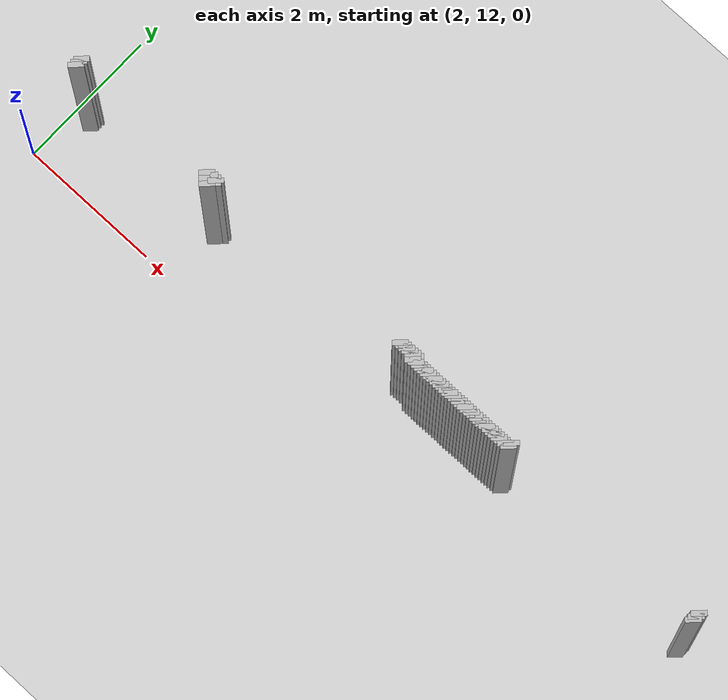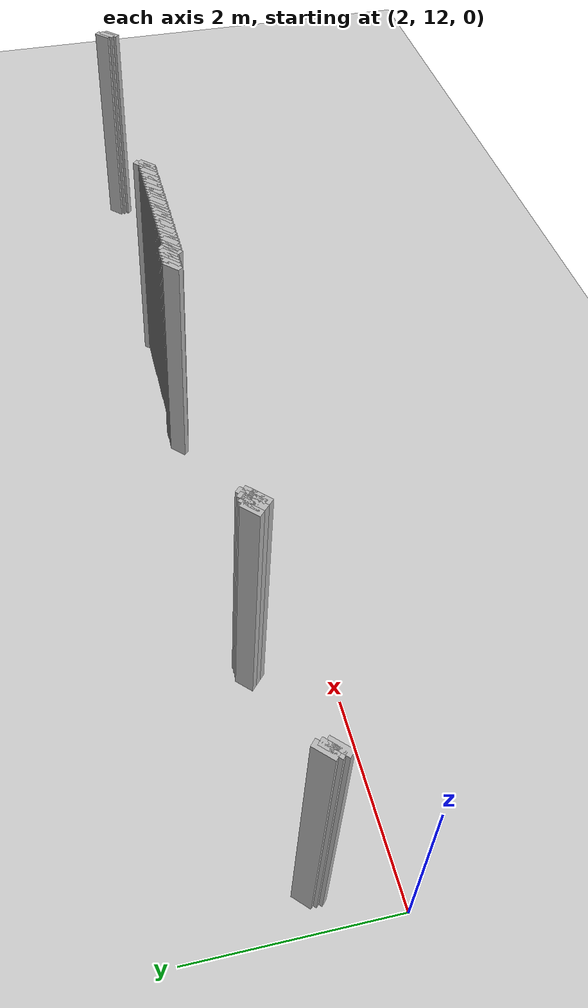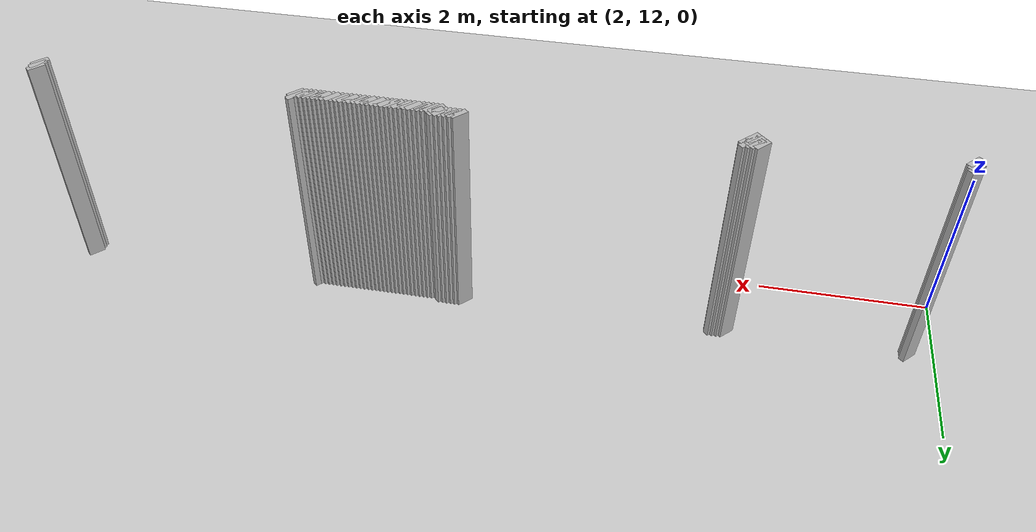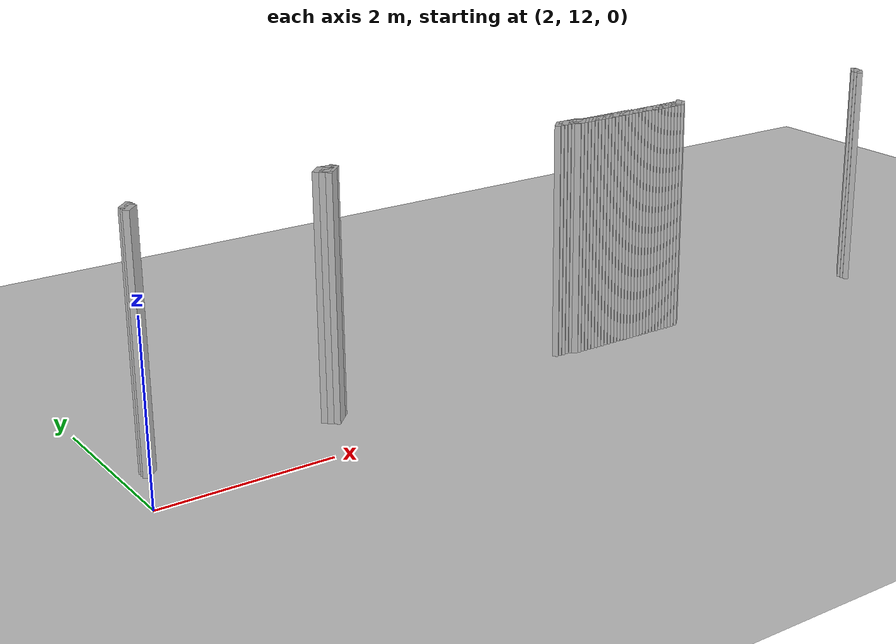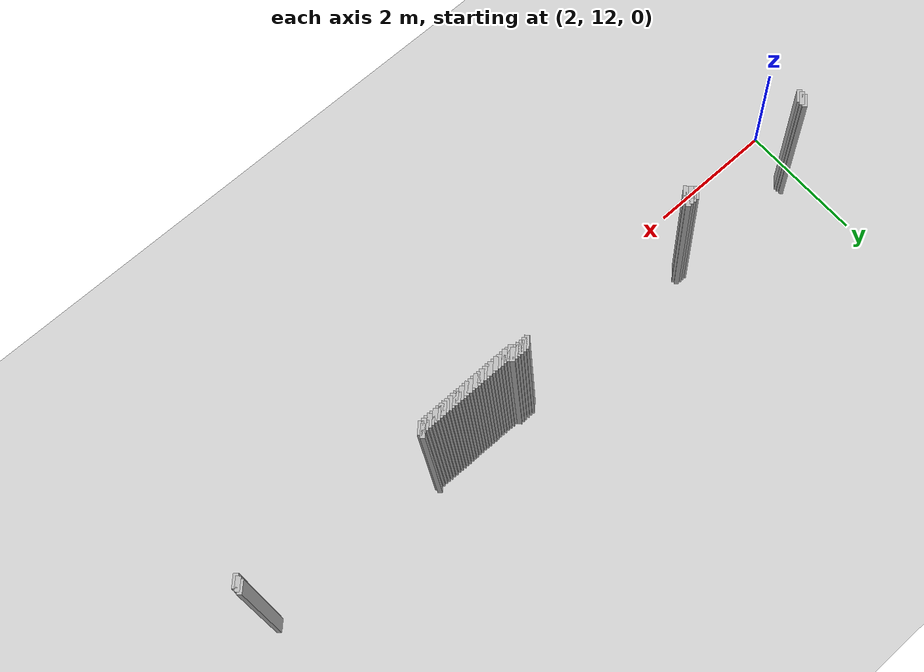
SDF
<sdf version="1.5">
 <world name="default">
  <include><uri>model://ground_plane</uri></include>
  <include><uri>model://sun</uri></include>
  <model name="grey_wall_900">
   <static>1</static>
   <link name="link">
    <pose>7.550000000000001 12.9  1.4 0 0 -0.7853981633974483</pose>
    <collision name="collision">
     <geometry><box><size>0.07071067811865576 .2  2.8</size></box></geometry>
    </collision>
    <visual name="visual">
     <cast_shadows>0</cast_shadows>
     <geometry><box><size>0.07071067811865576 .2  2.8</size></box></geometry>
    </visual>
   </link>
  </model>
  <model name="grey_wall_901">
   <static>1</static>
   <link name="link">
    <pose>7.6000000000000005 12.9  1.4 0 0 -0.7853981633974483</pose>
    <collision name="collision">
     <geometry><box><size>0.07071067811865576 .2  2.8</size></box></geometry>
    </collision>
    <visual name="visual">
     <cast_shadows>0</cast_shadows>
     <geometry><box><size>0.07071067811865576 .2  2.8</size></box></geometry>
    </visual>
   </link>
  </model>
  <model name="grey_wall_902">
   <static>1</static>
   <link name="link">
    <pose>7.65 12.9  1.4 0 0 -0.7853981633974483</pose>
    <collision name="collision">
     <geometry><box><size>0.07071067811865576 .2  2.8</size></box></geometry>
    </collision>
    <visual name="visual">
     <cast_shadows>0</cast_shadows>
     <geometry><box><size>0.07071067811865576 .2  2.8</size></box></geometry>
    </visual>
   </link>
  </model>
  <model name="grey_wall_903">
   <static>1</static>
   <link name="link">
    <pose>7.7 12.9  1.4 0 0 -0.7853981633974483</pose>
    <collision name="collision">
     <geometry><box><size>0.07071067811865576 .2  2.8</size></box></geometry>
    </collision>
    <visual name="visual">
     <cast_shadows>0</cast_shadows>
     <geometry><box><size>0.07071067811865576 .2  2.8</size></box></geometry>
    </visual>
   </link>
  </model>
  <model name="grey_wall_904">
   <static>1</static>
   <link name="link">
    <pose>7.75 12.9  1.4 0 0 -0.7853981633974483</pose>
    <collision name="collision">
     <geometry><box><size>0.07071067811865576 .2  2.8</size></box></geometry>
    </collision>
    <visual name="visual">
     <cast_shadows>0</cast_shadows>
     <geometry><box><size>0.07071067811865576 .2  2.8</size></box></geometry>
    </visual>
   </link>
  </model>
  <model name="grey_wall_905">
   <static>1</static>
   <link name="link">
    <pose>7.800000000000001 12.9  1.4 0 0 -0.7853981633974483</pose>
    <collision name="collision">
     <geometry><box><size>0.07071067811865576 .2  2.8</size></box></geometry>
    </collision>
    <visual name="visual">
     <cast_shadows>0</cast_shadows>
     <geometry><box><size>0.07071067811865576 .2  2.8</size></box></geometry>
    </visual>
   </link>
  </model>
  <model name="grey_wall_906">
   <static>1</static>
   <link name="link">
    <pose>9.35 12.9  1.4 0 0 -0.7853981633974483</pose>
    <collision name="collision">
     <geometry><box><size>0.07071067811865576 .2  2.8</size></box></geometry>
    </collision>
    <visual name="visual">
     <cast_shadows>0</cast_shadows>
     <geometry><box><size>0.07071067811865576 .2  2.8</size></box></geometry>
    </visual>
   </link>
  </model>
  <model name="grey_wall_907">
   <static>1</static>
   <link name="link">
    <pose>12.350000000000001 12.9  1.4 0 0 -0.7853981633974483</pose>
    <collision name="collision">
     <geometry><box><size>0.07071067811865576 .2  2.8</size></box></geometry>
    </collision>
    <visual name="visual">
     <cast_shadows>0</cast_shadows>
     <geometry><box><size>0.07071067811865576 .2  2.8</size></box></geometry>
    </visual>
   </link>
  </model>
  <model name="grey_wall_908">
   <static>1</static>
   <link name="link">
    <pose>2.3000000000000003 12.850000000000001  1.4 0 0 -0.7853981633974572</pose>
    <collision name="collision">
     <geometry><box><size>0.07071067811865513 .2  2.8</size></box></geometry>
    </collision>
    <visual name="visual">
     <cast_shadows>0</cast_shadows>
     <geometry><box><size>0.07071067811865513 .2  2.8</size></box></geometry>
    </visual>
   </link>
  </model>
  <model name="grey_wall_909">
   <static>1</static>
   <link name="link">
    <pose>4.4 12.850000000000001  1.4 0 0 -0.7853981633974483</pose>
    <collision name="collision">
     <geometry><box><size>0.07071067811865576 .2  2.8</size></box></geometry>
    </collision>
    <visual name="visual">
     <cast_shadows>0</cast_shadows>
     <geometry><box><size>0.07071067811865576 .2  2.8</size></box></geometry>
    </visual>
   </link>
  </model>
  <model name="grey_wall_910">
   <static>1</static>
   <link name="link">
    <pose>4.45 12.850000000000001  1.4 0 0 -0.7853981633974483</pose>
    <collision name="collision">
     <geometry><box><size>0.07071067811865576 .2  2.8</size></box></geometry>
    </collision>
    <visual name="visual">
     <cast_shadows>0</cast_shadows>
     <geometry><box><size>0.07071067811865576 .2  2.8</size></box></geometry>
    </visual>
   </link>
  </model>
  <model name="grey_wall_911">
   <static>1</static>
   <link name="link">
    <pose>4.5 12.850000000000001  1.4 0 0 -0.7853981633974483</pose>
    <collision name="collision">
     <geometry><box><size>0.07071067811865576 .2  2.8</size></box></geometry>
    </collision>
    <visual name="visual">
     <cast_shadows>0</cast_shadows>
     <geometry><box><size>0.07071067811865576 .2  2.8</size></box></geometry>
    </visual>
   </link>
  </model>
  <model name="grey_wall_912">
   <static>1</static>
   <link name="link">
    <pose>4.55 12.850000000000001  1.4 0 0 -0.7853981633974483</pose>
    <collision name="collision">
     <geometry><box><size>0.07071067811865576 .2  2.8</size></box></geometry>
    </collision>
    <visual name="visual">
     <cast_shadows>0</cast_shadows>
     <geometry><box><size>0.07071067811865576 .2  2.8</size></box></geometry>
    </visual>
   </link>
  </model>
  <model name="grey_wall_913">
   <static>1</static>
   <link name="link">
    <pose>7.800000000000001 12.850000000000001  1.4 0 0 -0.7853981633974483</pose>
    <collision name="collision">
     <geometry><box><size>0.07071067811865576 .2  2.8</size></box></geometry>
    </collision>
    <visual name="visual">
     <cast_shadows>0</cast_shadows>
     <geometry><box><size>0.07071067811865576 .2  2.8</size></box></geometry>
    </visual>
   </link>
  </model>
  <model name="grey_wall_914">
   <static>1</static>
   <link name="link">
    <pose>7.8500000000000005 12.850000000000001  1.4 0 0 -0.7853981633974483</pose>
    <collision name="collision">
     <geometry><box><size>0.07071067811865576 .2  2.8</size></box></geometry>
    </collision>
    <visual name="visual">
     <cast_shadows>0</cast_shadows>
     <geometry><box><size>0.07071067811865576 .2  2.8</size></box></geometry>
    </visual>
   </link>
  </model>
  <model name="grey_wall_915">
   <static>1</static>
   <link name="link">
    <pose>7.9 12.850000000000001  1.4 0 0 -0.7853981633974483</pose>
    <collision name="collision">
     <geometry><box><size>0.07071067811865576 .2  2.8</size></box></geometry>
    </collision>
    <visual name="visual">
     <cast_shadows>0</cast_shadows>
     <geometry><box><size>0.07071067811865576 .2  2.8</size></box></geometry>
    </visual>
   </link>
  </model>
  <model name="grey_wall_916">
   <static>1</static>
   <link name="link">
    <pose>7.95 12.850000000000001  1.4 0 0 -0.7853981633974483</pose>
    <collision name="collision">
     <geometry><box><size>0.07071067811865576 .2  2.8</size></box></geometry>
    </collision>
    <visual name="visual">
     <cast_shadows>0</cast_shadows>
     <geometry><box><size>0.07071067811865576 .2  2.8</size></box></geometry>
    </visual>
   </link>
  </model>
  <model name="grey_wall_917">
   <static>1</static>
   <link name="link">
    <pose>8.0 12.850000000000001  1.4 0 0 -0.7853981633974483</pose>
    <collision name="collision">
     <geometry><box><size>0.07071067811865576 .2  2.8</size></box></geometry>
    </collision>
    <visual name="visual">
     <cast_shadows>0</cast_shadows>
     <geometry><box><size>0.07071067811865576 .2  2.8</size></box></geometry>
    </visual>
   </link>
  </model>
  <model name="grey_wall_918">
   <static>1</static>
   <link name="link">
    <pose>8.05 12.850000000000001  1.4 0 0 -0.7853981633974483</pose>
    <collision name="collision">
     <geometry><box><size>0.07071067811865576 .2  2.8</size></box></geometry>
    </collision>
    <visual name="visual">
     <cast_shadows>0</cast_shadows>
     <geometry><box><size>0.07071067811865576 .2  2.8</size></box></geometry>
    </visual>
   </link>
  </model>
  <model name="grey_wall_919">
   <static>1</static>
   <link name="link">
    <pose>8.1 12.850000000000001  1.4 0 0 -0.7853981633974483</pose>
    <collision name="collision">
     <geometry><box><size>0.07071067811865576 .2  2.8</size></box></geometry>
    </collision>
    <visual name="visual">
     <cast_shadows>0</cast_shadows>
     <geometry><box><size>0.07071067811865576 .2  2.8</size></box></geometry>
    </visual>
   </link>
  </model>
  <model name="grey_wall_920">
   <static>1</static>
   <link name="link">
    <pose>8.15 12.850000000000001  1.4 0 0 -0.7853981633974483</pose>
    <collision name="collision">
     <geometry><box><size>0.07071067811865576 .2  2.8</size></box></geometry>
    </collision>
    <visual name="visual">
     <cast_shadows>0</cast_shadows>
     <geometry><box><size>0.07071067811865576 .2  2.8</size></box></geometry>
    </visual>
   </link>
  </model>
  <model name="grey_wall_921">
   <static>1</static>
   <link name="link">
    <pose>8.200000000000001 12.850000000000001  1.4 0 0 -0.7853981633974483</pose>
    <collision name="collision">
     <geometry><box><size>0.07071067811865576 .2  2.8</size></box></geometry>
    </collision>
    <visual name="visual">
     <cast_shadows>0</cast_shadows>
     <geometry><box><size>0.07071067811865576 .2  2.8</size></box></geometry>
    </visual>
   </link>
  </model>
  <model name="grey_wall_922">
   <static>1</static>
   <link name="link">
    <pose>8.25 12.850000000000001  1.4 0 0 -0.7853981633974483</pose>
    <collision name="collision">
     <geometry><box><size>0.07071067811865576 .2  2.8</size></box></geometry>
    </collision>
    <visual name="visual">
     <cast_shadows>0</cast_shadows>
     <geometry><box><size>0.07071067811865576 .2  2.8</size></box></geometry>
    </visual>
   </link>
  </model>
  <model name="grey_wall_923">
   <static>1</static>
   <link name="link">
    <pose>8.3 12.850000000000001  1.4 0 0 -0.7853981633974483</pose>
    <collision name="collision">
     <geometry><box><size>0.07071067811865576 .2  2.8</size></box></geometry>
    </collision>
    <visual name="visual">
     <cast_shadows>0</cast_shadows>
     <geometry><box><size>0.07071067811865576 .2  2.8</size></box></geometry>
    </visual>
   </link>
  </model>
  <model name="grey_wall_924">
   <static>1</static>
   <link name="link">
    <pose>8.35 12.850000000000001  1.4 0 0 -0.7853981633974483</pose>
    <collision name="collision">
     <geometry><box><size>0.07071067811865576 .2  2.8</size></box></geometry>
    </collision>
    <visual name="visual">
     <cast_shadows>0</cast_shadows>
     <geometry><box><size>0.07071067811865576 .2  2.8</size></box></geometry>
    </visual>
   </link>
  </model>
  <model name="grey_wall_925">
   <static>1</static>
   <link name="link">
    <pose>8.4 12.850000000000001  1.4 0 0 -0.7853981633974483</pose>
    <collision name="collision">
     <geometry><box><size>0.07071067811865576 .2  2.8</size></box></geometry>
    </collision>
    <visual name="visual">
     <cast_shadows>0</cast_shadows>
     <geometry><box><size>0.07071067811865576 .2  2.8</size></box></geometry>
    </visual>
   </link>
  </model>
  <model name="grey_wall_926">
   <static>1</static>
   <link name="link">
    <pose>8.450000000000001 12.850000000000001  1.4 0 0 -0.7853981633974483</pose>
    <collision name="collision">
     <geometry><box><size>0.07071067811865576 .2  2.8</size></box></geometry>
    </collision>
    <visual name="visual">
     <cast_shadows>0</cast_shadows>
     <geometry><box><size>0.07071067811865576 .2  2.8</size></box></geometry>
    </visual>
   </link>
  </model>
  <model name="grey_wall_927">
   <static>1</static>
   <link name="link">
    <pose>8.5 12.850000000000001  1.4 0 0 -0.7853981633974483</pose>
    <collision name="collision">
     <geometry><box><size>0.07071067811865576 .2  2.8</size></box></geometry>
    </collision>
    <visual name="visual">
     <cast_shadows>0</cast_shadows>
     <geometry><box><size>0.07071067811865576 .2  2.8</size></box></geometry>
    </visual>
   </link>
  </model>
  <model name="grey_wall_928">
   <static>1</static>
   <link name="link">
    <pose>8.55 12.850000000000001  1.4 0 0 -0.7853981633974483</pose>
    <collision name="collision">
     <geometry><box><size>0.07071067811865576 .2  2.8</size></box></geometry>
    </collision>
    <visual name="visual">
     <cast_shadows>0</cast_shadows>
     <geometry><box><size>0.07071067811865576 .2  2.8</size></box></geometry>
    </visual>
   </link>
  </model>
  <model name="grey_wall_929">
   <static>1</static>
   <link name="link">
    <pose>8.6 12.850000000000001  1.4 0 0 -0.7853981633974483</pose>
    <collision name="collision">
     <geometry><box><size>0.07071067811865576 .2  2.8</size></box></geometry>
    </collision>
    <visual name="visual">
     <cast_shadows>0</cast_shadows>
     <geometry><box><size>0.07071067811865576 .2  2.8</size></box></geometry>
    </visual>
   </link>
  </model>
  <model name="grey_wall_930">
   <static>1</static>
   <link name="link">
    <pose>8.65 12.850000000000001  1.4 0 0 -0.7853981633974483</pose>
    <collision name="collision">
     <geometry><box><size>0.07071067811865576 .2  2.8</size></box></geometry>
    </collision>
    <visual name="visual">
     <cast_shadows>0</cast_shadows>
     <geometry><box><size>0.07071067811865576 .2  2.8</size></box></geometry>
    </visual>
   </link>
  </model>
  <model name="grey_wall_931">
   <static>1</static>
   <link name="link">
    <pose>8.700000000000001 12.850000000000001  1.4 0 0 -0.7853981633974483</pose>
    <collision name="collision">
     <geometry><box><size>0.07071067811865576 .2  2.8</size></box></geometry>
    </collision>
    <visual name="visual">
     <cast_shadows>0</cast_shadows>
     <geometry><box><size>0.07071067811865576 .2  2.8</size></box></geometry>
    </visual>
   </link>
  </model>
  <model name="grey_wall_932">
   <static>1</static>
   <link name="link">
    <pose>8.75 12.850000000000001  1.4 0 0 -0.7853981633974483</pose>
    <collision name="collision">
     <geometry><box><size>0.07071067811865576 .2  2.8</size></box></geometry>
    </collision>
    <visual name="visual">
     <cast_shadows>0</cast_shadows>
     <geometry><box><size>0.07071067811865576 .2  2.8</size></box></geometry>
    </visual>
   </link>
  </model>
  <model name="grey_wall_933">
   <static>1</static>
   <link name="link">
    <pose>8.8 12.850000000000001  1.4 0 0 -0.7853981633974483</pose>
    <collision name="collision">
     <geometry><box><size>0.07071067811865576 .2  2.8</size></box></geometry>
    </collision>
    <visual name="visual">
     <cast_shadows>0</cast_shadows>
     <geometry><box><size>0.07071067811865576 .2  2.8</size></box></geometry>
    </visual>
   </link>
  </model>
  <model name="grey_wall_934">
   <static>1</static>
   <link name="link">
    <pose>8.85 12.850000000000001  1.4 0 0 -0.7853981633974483</pose>
    <collision name="collision">
     <geometry><box><size>0.07071067811865576 .2  2.8</size></box></geometry>
    </collision>
    <visual name="visual">
     <cast_shadows>0</cast_shadows>
     <geometry><box><size>0.07071067811865576 .2  2.8</size></box></geometry>
    </visual>
   </link>
  </model>
  <model name="grey_wall_935">
   <static>1</static>
   <link name="link">
    <pose>8.9 12.850000000000001  1.4 0 0 -0.7853981633974483</pose>
    <collision name="collision">
     <geometry><box><size>0.07071067811865576 .2  2.8</size></box></geometry>
    </collision>
    <visual name="visual">
     <cast_shadows>0</cast_shadows>
     <geometry><box><size>0.07071067811865576 .2  2.8</size></box></geometry>
    </visual>
   </link>
  </model>
  <model name="grey_wall_936">
   <static>1</static>
   <link name="link">
    <pose>8.950000000000001 12.850000000000001  1.4 0 0 -0.7853981633974483</pose>
    <collision name="collision">
     <geometry><box><size>0.07071067811865576 .2  2.8</size></box></geometry>
    </collision>
    <visual name="visual">
     <cast_shadows>0</cast_shadows>
     <geometry><box><size>0.07071067811865576 .2  2.8</size></box></geometry>
    </visual>
   </link>
  </model>
  <model name="grey_wall_937">
   <static>1</static>
   <link name="link">
    <pose>9.0 12.850000000000001  1.4 0 0 -0.7853981633974483</pose>
    <collision name="collision">
     <geometry><box><size>0.07071067811865576 .2  2.8</size></box></geometry>
    </collision>
    <visual name="visual">
     <cast_shadows>0</cast_shadows>
     <geometry><box><size>0.07071067811865576 .2  2.8</size></box></geometry>
    </visual>
   </link>
  </model>
  <model name="grey_wall_938">
   <static>1</static>
   <link name="link">
    <pose>9.05 12.850000000000001  1.4 0 0 -0.7853981633974483</pose>
    <collision name="collision">
     <geometry><box><size>0.07071067811865576 .2  2.8</size></box></geometry>
    </collision>
    <visual name="visual">
     <cast_shadows>0</cast_shadows>
     <geometry><box><size>0.07071067811865576 .2  2.8</size></box></geometry>
    </visual>
   </link>
  </model>
  <model name="grey_wall_939">
   <static>1</static>
   <link name="link">
    <pose>9.1 12.850000000000001  1.4 0 0 -0.7853981633974483</pose>
    <collision name="collision">
     <geometry><box><size>0.07071067811865576 .2  2.8</size></box></geometry>
    </collision>
    <visual name="visual">
     <cast_shadows>0</cast_shadows>
     <geometry><box><size>0.07071067811865576 .2  2.8</size></box></geometry>
    </visual>
   </link>
  </model>
  <model name="grey_wall_940">
   <static>1</static>
   <link name="link">
    <pose>9.15 12.850000000000001  1.4 0 0 -0.7853981633974483</pose>
    <collision name="collision">
     <geometry><box><size>0.07071067811865576 .2  2.8</size></box></geometry>
    </collision>
    <visual name="visual">
     <cast_shadows>0</cast_shadows>
     <geometry><box><size>0.07071067811865576 .2  2.8</size></box></geometry>
    </visual>
   </link>
  </model>
  <model name="grey_wall_941">
   <static>1</static>
   <link name="link">
    <pose>9.200000000000001 12.850000000000001  1.4 0 0 -0.7853981633974483</pose>
    <collision name="collision">
     <geometry><box><size>0.07071067811865576 .2  2.8</size></box></geometry>
    </collision>
    <visual name="visual">
     <cast_shadows>0</cast_shadows>
     <geometry><box><size>0.07071067811865576 .2  2.8</size></box></geometry>
    </visual>
   </link>
  </model>
  <model name="grey_wall_942">
   <static>1</static>
   <link name="link">
    <pose>9.25 12.850000000000001  1.4 0 0 -0.7853981633974483</pose>
    <collision name="collision">
     <geometry><box><size>0.07071067811865576 .2  2.8</size></box></geometry>
    </collision>
    <visual name="visual">
     <cast_shadows>0</cast_shadows>
     <geometry><box><size>0.07071067811865576 .2  2.8</size></box></geometry>
    </visual>
   </link>
  </model>
  <model name="grey_wall_943">
   <static>1</static>
   <link name="link">
    <pose>9.3 12.850000000000001  1.4 0 0 -0.7853981633974483</pose>
    <collision name="collision">
     <geometry><box><size>0.07071067811865576 .2  2.8</size></box></geometry>
    </collision>
    <visual name="visual">
     <cast_shadows>0</cast_shadows>
     <geometry><box><size>0.07071067811865576 .2  2.8</size></box></geometry>
    </visual>
   </link>
  </model>
  <model name="grey_wall_944">
   <static>1</static>
   <link name="link">
    <pose>9.35 12.850000000000001  1.4 0 0 -0.7853981633974483</pose>
    <collision name="collision">
     <geometry><box><size>0.07071067811865576 .2  2.8</size></box></geometry>
    </collision>
    <visual name="visual">
     <cast_shadows>0</cast_shadows>
     <geometry><box><size>0.07071067811865576 .2  2.8</size></box></geometry>
    </visual>
   </link>
  </model>
  <model name="grey_wall_945">
   <static>1</static>
   <link name="link">
    <pose>12.350000000000001 12.850000000000001  1.4 0 0 -0.7853981633974483</pose>
    <collision name="collision">
     <geometry><box><size>0.07071067811865576 .2  2.8</size></box></geometry>
    </collision>
    <visual name="visual">
     <cast_shadows>0</cast_shadows>
     <geometry><box><size>0.07071067811865576 .2  2.8</size></box></geometry>
    </visual>
   </link>
  </model>
  <model name="grey_wall_946">
   <static>1</static>
   <link name="link">
    <pose>2.3000000000000003 12.8  1.4 0 0 -0.7853981633974572</pose>
    <collision name="collision">
     <geometry><box><size>0.07071067811865513 .2  2.8</size></box></geometry>
    </collision>
    <visual name="visual">
     <cast_shadows>0</cast_shadows>
     <geometry><box><size>0.07071067811865513 .2  2.8</size></box></geometry>
    </visual>
   </link>
  </model>
  <model name="grey_wall_947">
   <static>1</static>
   <link name="link">
    <pose>4.45 12.8  1.4 0 0 -0.7853981633974483</pose>
    <collision name="collision">
     <geometry><box><size>0.07071067811865576 .2  2.8</size></box></geometry>
    </collision>
    <visual name="visual">
     <cast_shadows>0</cast_shadows>
     <geometry><box><size>0.07071067811865576 .2  2.8</size></box></geometry>
    </visual>
   </link>
  </model>
  <model name="grey_wall_948">
   <static>1</static>
   <link name="link">
    <pose>4.5 12.8  1.4 0 0 -0.7853981633974483</pose>
    <collision name="collision">
     <geometry><box><size>0.07071067811865576 .2  2.8</size></box></geometry>
    </collision>
    <visual name="visual">
     <cast_shadows>0</cast_shadows>
     <geometry><box><size>0.07071067811865576 .2  2.8</size></box></geometry>
    </visual>
   </link>
  </model>
  <model name="grey_wall_949">
   <static>1</static>
   <link name="link">
    <pose>4.55 12.8  1.4 0 0 -0.7853981633974483</pose>
    <collision name="collision">
     <geometry><box><size>0.07071067811865576 .2  2.8</size></box></geometry>
    </collision>
    <visual name="visual">
     <cast_shadows>0</cast_shadows>
     <geometry><box><size>0.07071067811865576 .2  2.8</size></box></geometry>
    </visual>
   </link>
  </model>
  <model name="grey_wall_950">
   <static>1</static>
   <link name="link">
    <pose>12.350000000000001 12.8  1.4 0 0 -0.7853981633974483</pose>
    <collision name="collision">
     <geometry><box><size>0.07071067811865576 .2  2.8</size></box></geometry>
    </collision>
    <visual name="visual">
     <cast_shadows>0</cast_shadows>
     <geometry><box><size>0.07071067811865576 .2  2.8</size></box></geometry>
    </visual>
   </link>
  </model>
  <model name="grey_wall_951">
   <static>1</static>
   <link name="link">
    <pose>2.3000000000000003 12.75  1.4 0 0 -0.7853981633974572</pose>
    <collision name="collision">
     <geometry><box><size>0.07071067811865513 .2  2.8</size></box></geometry>
    </collision>
    <visual name="visual">
     <cast_shadows>0</cast_shadows>
     <geometry><box><size>0.07071067811865513 .2  2.8</size></box></geometry>
    </visual>
   </link>
  </model>
  <model name="grey_wall_952">
   <static>1</static>
   <link name="link">
    <pose>4.5 12.75  1.4 0 0 -0.7853981633974483</pose>
    <collision name="collision">
     <geometry><box><size>0.07071067811865576 .2  2.8</size></box></geometry>
    </collision>
    <visual name="visual">
     <cast_shadows>0</cast_shadows>
     <geometry><box><size>0.07071067811865576 .2  2.8</size></box></geometry>
    </visual>
   </link>
  </model>
 </world>
</sdf>
